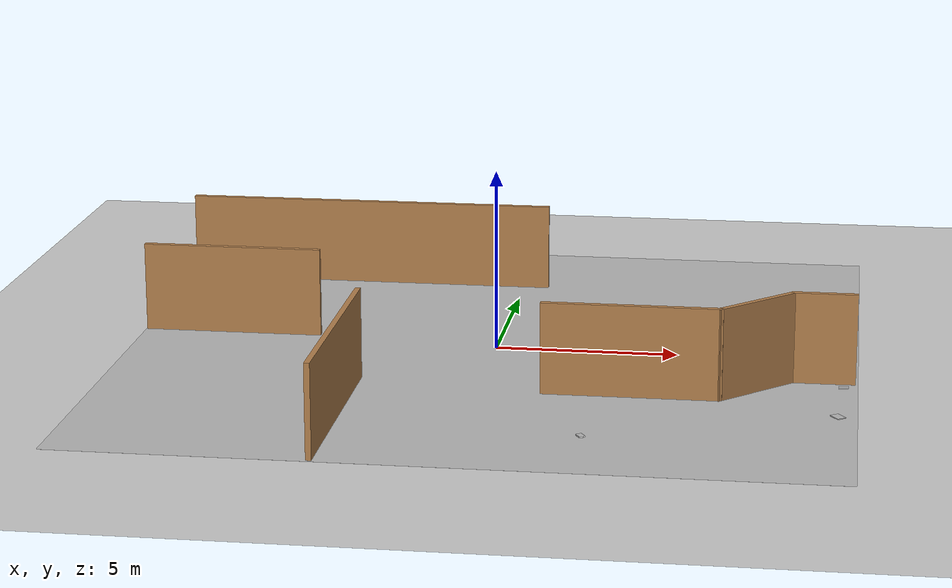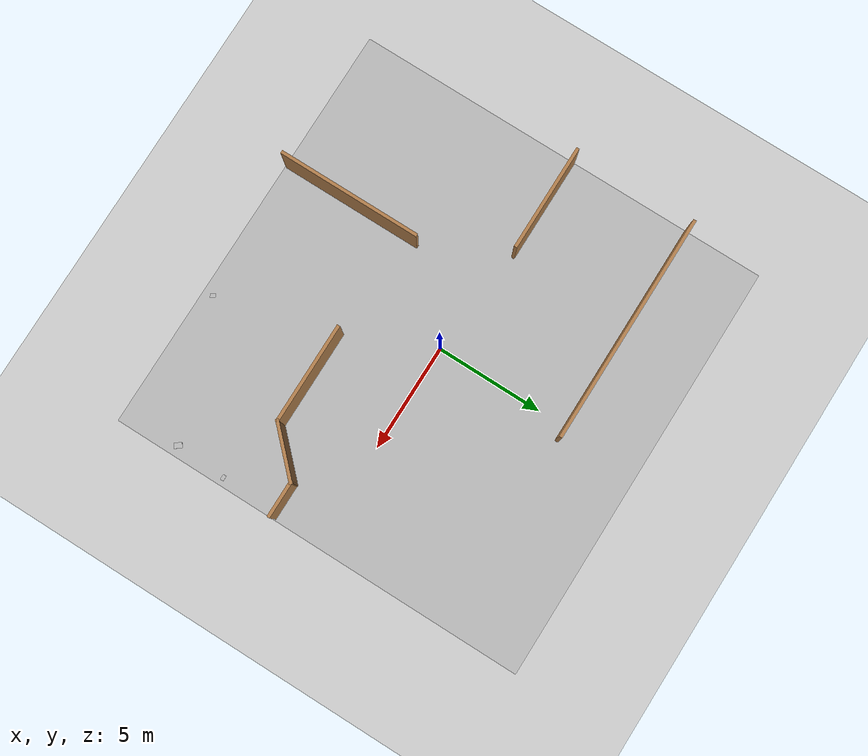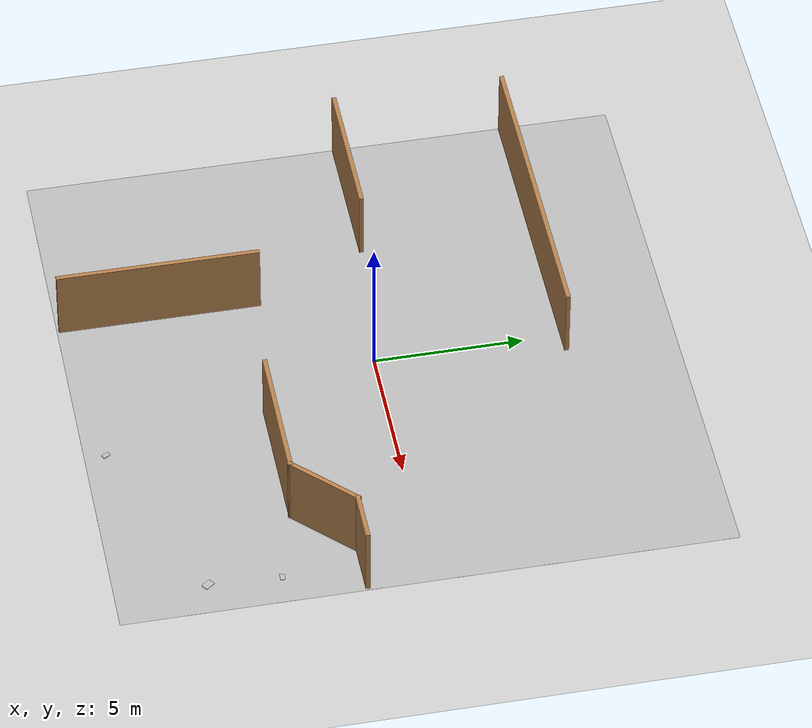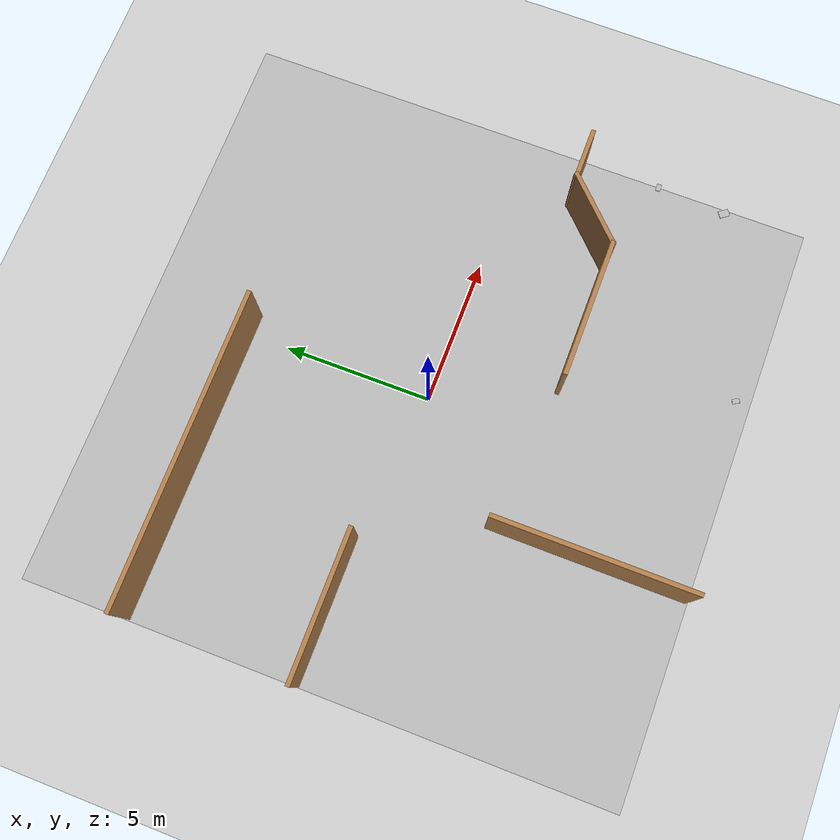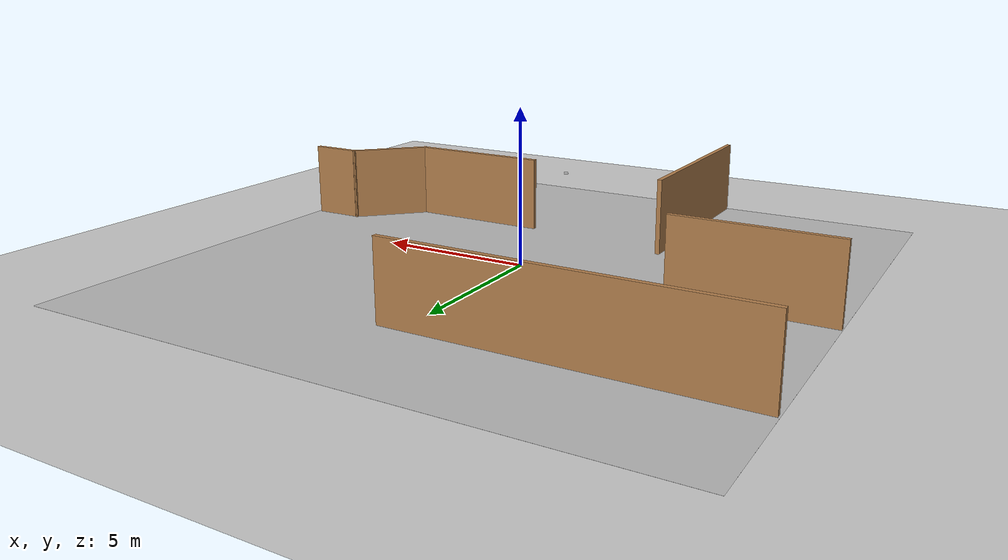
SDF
<sdf version="1.6">
 <world name="default">
  <model name="ground_plane">
   <static>1</static>
   <link name="link">
    <collision name="collision">
     <geometry><plane><normal>0 0 1</normal><size>100 100</size></plane></geometry>
     <surface><friction><ode><mu>1</mu><mu2>1</mu2></ode></friction></surface>
    </collision>
    <visual name="visual">
     <cast_shadows>0</cast_shadows>
     <geometry><plane><normal>0 0 1</normal><size>100 100</size></plane></geometry>
     <material>
      <script><uri>file://media/materials/scripts/gazebo.material</uri><name>Gazebo/Grey</name></script>
     </material>
    </visual>
    <velocity_decay><linear>0</linear><angular>0</angular></velocity_decay>
   </link>
  </model>
  <model name="newspaper_2">
   <link name="link_0">
    <visual name="visual">
     <geometry><box><size>0.35 0.25 0.02</size></box></geometry>
     <material>
      <script>
       <uri>model://newspaper_2/materials/scripts</uri>
       <uri>model://newspaper_2/materials/textures</uri>
       <name>newspaper_2</name>
      </script>
     </material>
    </visual>
    <collision name="collision"><geometry><box><size>0.35 0.25 0.02</size></box></geometry></collision>
   </link>
   <static>1</static>
   <pose>9.42495 -7.10849 0.77593 0 0 -0.934541</pose>
  </model>
  <model name="book_18_0">
   <link name="cover">
    <pose>0 -0.000108 0.015405 0 -0 0</pose>
    <visual name="visual">
     <geometry><box><size>0.245 0.16 0.03</size></box></geometry>
     <material>
      <script>
       <uri>model://book_18/materials/scripts</uri>
       <uri>model://book_18/materials/textures</uri>
       <name>book_18</name>
      </script>
     </material>
    </visual>
    <collision name="collision"><geometry><box><size>0.245 0.16 0.03</size></box></geometry></collision>
   </link>
   <link name="page">
    <pose>0 0.000608 0.015405 0 -0 0</pose>
    <visual name="visual">
     <geometry><box><size>0.24502 0.15862 0.028</size></box></geometry>
     <material>
      <lighting>1</lighting>
      <ambient>1 1 1 1</ambient>
      <diffuse>1 1 1 1</diffuse>
      <specular>0.01 0.01 0.01 1</specular>
      <emissive>0 0 0 1</emissive>
      <shader type="vertex"><normal_map>__default__</normal_map></shader>
     </material>
    </visual>
    <collision name="collision"><geometry><box><size>0.245 0.16 0.03</size></box></geometry></collision>
   </link>
   <static>1</static>
   <pose>3.29779 -9.39066 0.764084 0 0 -1.01851</pose>
  </model>
  <model name="book_14_1">
   <link name="cover">
    <pose>0 -0.000108 0.015405 0 -0 0</pose>
    <visual name="visual">
     <geometry><box><size>0.245 0.16 0.03</size></box></geometry>
     <material>
      <script>
       <uri>model://book_14/materials/scripts</uri>
       <uri>model://book_14/materials/textures</uri>
       <name>book_14</name>
      </script>
     </material>
    </visual>
    <collision name="collision"><geometry><box><size>0.245 0.16 0.03</size></box></geometry></collision>
   </link>
   <link name="page">
    <pose>0 0.000608 0.015405 0 -0 0</pose>
    <visual name="visual">
     <geometry><box><size>0.24502 0.15862 0.028</size></box></geometry>
     <material>
      <lighting>1</lighting>
      <ambient>1 1 1 1</ambient>
      <diffuse>1 1 1 1</diffuse>
      <specular>0.01 0.01 0.01 1</specular>
      <emissive>0 0 0 1</emissive>
      <shader type="vertex"><normal_map>__default__</normal_map></shader>
     </material>
    </visual>
    <collision name="collision"><geometry><box><size>0.245 0.16 0.03</size></box></geometry></collision>
   </link>
   <static>1</static>
   <pose>9.54563 -4.75392 0.763218 0 -0 0</pose>
  </model>
  <model name="Floor_room">
   <link name="main">
    <pose>0 0 0.01 0 -0 0</pose>
    <collision name="main_Collision"><geometry><box><size>20 20 0.001</size></box></geometry></collision>
    <visual name="main_Visual">
     <geometry><box><size>20 20 0.001</size></box></geometry>
     <material>
      <script>
       <uri>model://Floor_room/materials/scripts</uri>
       <uri>model://Floor_room/materials/textures</uri>
       <name>floor_room</name>
      </script>
     </material>
    </visual>
   </link>
   <static>1</static>
   <pose>-0.0718 -0.016894 0.012233 0 -0 0</pose>
  </model>
  <model name="Adel">
   <pose>-0.093957 -1.78062 0 0 -0 0</pose>
   <link name="Wall_0">
    <collision name="Wall_0_Collision">
     <geometry><box><size>6.75 0.15 2.5</size></box></geometry>
     <pose>0 0 1.25 0 -0 0</pose>
    </collision>
    <visual name="Wall_0_Visual">
     <pose>0 0 1.25 0 -0 0</pose>
     <geometry><box><size>6.75 0.15 2.5</size></box></geometry>
     <material>
      <script><uri>file://media/materials/scripts/gazebo.material</uri><name>Gazebo/Wood</name></script>
      <ambient>1 1 1 1</ambient>
     </material>
     <meta><layer>0</layer></meta>
    </visual>
    <pose>-3.17717 -4.79271 0 0 -0 -1.5708</pose>
   </link>
   <link name="Wall_17">
    <collision name="Wall_17_Collision">
     <geometry><box><size>5 0.15 2.5</size></box></geometry>
     <pose>0 0 1.25 0 -0 0</pose>
    </collision>
    <visual name="Wall_17_Visual">
     <pose>0 0 1.25 0 -0 0</pose>
     <geometry><box><size>5 0.15 2.5</size></box></geometry>
     <material>
      <script><uri>file://media/materials/scripts/gazebo.material</uri><name>Gazebo/Wood</name></script>
      <ambient>1 1 1 1</ambient>
     </material>
     <meta><layer>0</layer></meta>
    </visual>
    <pose>-7.45445 2.33014 0 0 -0 0</pose>
   </link>
   <link name="Wall_20">
    <collision name="Wall_20_Collision">
     <geometry><box><size>10.75 0.15 2.5</size></box></geometry>
     <pose>0 0 1.25 0 -0 0</pose>
    </collision>
    <visual name="Wall_20_Visual">
     <pose>0 0 1.25 0 -0 0</pose>
     <geometry><box><size>10.75 0.15 2.5</size></box></geometry>
     <material>
      <script><uri>file://media/materials/scripts/gazebo.material</uri><name>Gazebo/Wood</name></script>
      <ambient>1 1 1 1</ambient>
     </material>
     <meta><layer>0</layer></meta>
    </visual>
    <pose>-4.55535 8.09271 0 0 -0 0</pose>
   </link>
   <link name="Wall_34">
    <collision name="Wall_34_Collision">
     <geometry><box><size>1.75 0.15 2.5</size></box></geometry>
     <pose>0 0 1.25 0 -0 0</pose>
    </collision>
    <visual name="Wall_34_Visual">
     <pose>0 0 1.25 0 -0 0</pose>
     <geometry><box><size>1.75 0.15 2.5</size></box></geometry>
     <material>
      <script><uri>file://media/materials/scripts/gazebo.material</uri><name>Gazebo/Wood</name></script>
      <ambient>1 1 1 1</ambient>
     </material>
     <meta><layer>0</layer></meta>
    </visual>
    <pose>9.07944 -0.287892 0 0 -0 3.14159</pose>
   </link>
   <link name="Wall_36">
    <collision name="Wall_36_Collision">
     <geometry><box><size>2.75 0.15 2.5</size></box></geometry>
     <pose>0 0 1.25 0 -0 0</pose>
    </collision>
    <visual name="Wall_36_Visual">
     <pose>0 0 1.25 0 -0 0</pose>
     <geometry><box><size>2.75 0.15 2.5</size></box></geometry>
     <material>
      <script><uri>file://media/materials/scripts/gazebo.material</uri><name>Gazebo/Wood</name></script>
      <ambient>1 1 1 1</ambient>
     </material>
     <meta><layer>0</layer></meta>
    </visual>
    <pose>7.36021 -1.20713 0 0 -0 -2.35619</pose>
   </link>
   <link name="Wall_38">
    <collision name="Wall_38_Collision">
     <geometry><box><size>4.75 0.15 2.5</size></box></geometry>
     <pose>0 0 1.25 0 -0 0</pose>
    </collision>
    <visual name="Wall_38_Visual">
     <pose>0 0 1.25 0 -0 0</pose>
     <geometry><box><size>4.75 0.15 2.5</size></box></geometry>
     <material>
      <script><uri>file://media/materials/scripts/gazebo.material</uri><name>Gazebo/Wood</name></script>
      <ambient>1 1 1 1</ambient>
     </material>
     <meta><layer>0</layer></meta>
    </visual>
    <pose>4.14097 -2.12637 0 0 -0 3.14159</pose>
   </link>
   <static>1</static>
  </model>
 </world>
</sdf>
